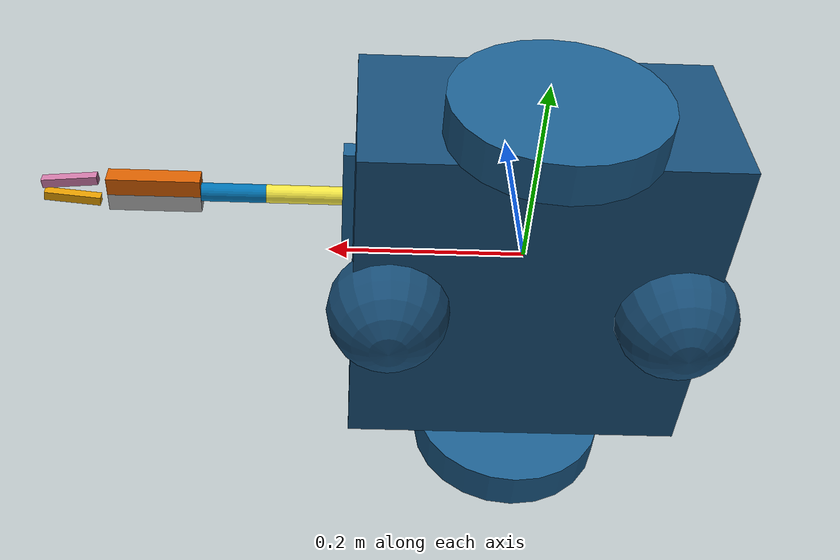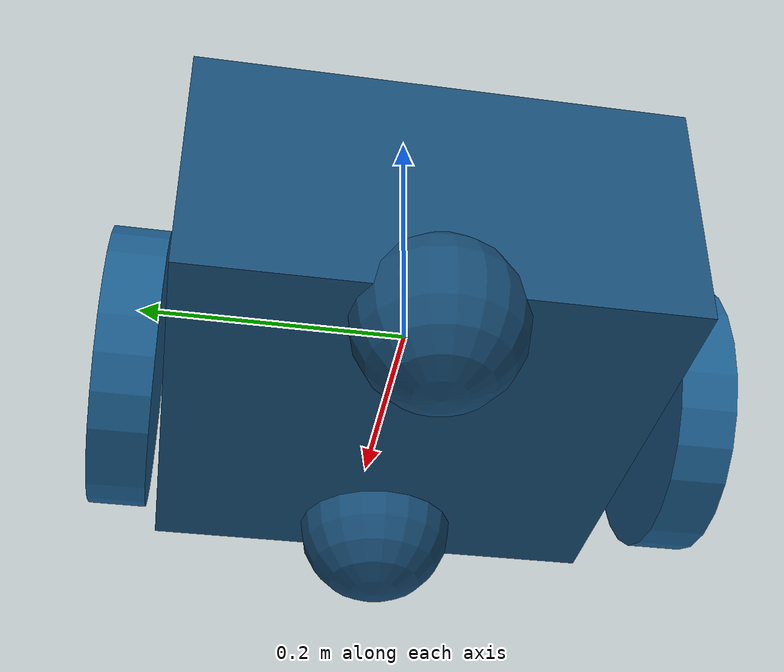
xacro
<?xml version="1.0"?>
<robot name="prm_robot"
  xmlns:xacro="http://ros.org/wiki/xacro">

  <!-- Definicao de Algumas Contantes -->

  <xacro:property name="base_width" value="0.35"/> <!-- Largura da base (corpo quadrado: == base_length) -->
  <xacro:property name="base_length" value="0.35"/> <!-- Comprimento da base (corpo quadrado: == base_width) -->
  <xacro:property name="base_height" value="0.18"/> <!-- Altura da base -->

  <xacro:property name="wheel_radius" value="0.10"/> <!-- Raio da roda -->
  <xacro:property name="wheel_width" value="0.04"/> <!-- Largura da roda -->
  <xacro:property name="wheel_ygap" value="0.025"/> <!-- Distancia entre as rodas -->
  <xacro:property name="wheel_zoff" value="0.05"/> <!-- Deslocamento da roda em Z -->
  <xacro:property name="wheel_xoff" value="0.0"/> <!-- Rodas no eixo do centro: gira no lugar sem varrer o corpo -->

  <xacro:property name="caster_xoff" value="0.14"/> <!-- Deslocamento do caster em X -->

  <!-- Definição de algumas propriedades inerciais -->
  <xacro:macro name="box_inertia" params="m w h d">
    <inertial>
      <origin xyz="0 0 0" rpy="${pi/2} 0 ${pi/2}"/>
      <mass value="${m}"/>
      <inertia ixx="${(m/12) * (h*h + d*d)}" ixy="0.0" ixz="0.0" iyy="${(m/12) * (w*w + d*d)}" iyz="0.0" izz="${(m/12) * (w*w + h*h)}"/>
    </inertial>
  </xacro:macro>

  <xacro:macro name="cylinder_inertia" params="m r h">
    <inertial>
      <origin xyz="0 0 0" rpy="${pi/2} 0 0" />
      <mass value="${m}"/>
      <inertia ixx="${(m/12) * (3*r*r + h*h)}" ixy = "0" ixz = "0" iyy="${(m/12) * (3*r*r + h*h)}" iyz = "0" izz="${(m/2) * (r*r)}"/>
    </inertial>
  </xacro:macro>

  <xacro:macro name="sphere_inertia" params="m r">
    <inertial>
      <mass value="${m}"/>
      <inertia ixx="${(2/5) * m * (r*r)}" ixy="0.0" ixz="0.0" iyy="${(2/5) * m * (r*r)}" iyz="0.0" izz="${(2/5) * m * (r*r)}"/>
    </inertial>
  </xacro:macro>

  <!-- Definindo plugin para publiar a pose do robo -->
  <gazebo>
    <plugin filename="libignition-gazebo-pose-publisher-system" name="ignition::gazebo::systems::PosePublisher">
      <publish_link_pose>false</publish_link_pose>
      <publish_model_pose>true</publish_model_pose>
      <publish_nested_model_pose>true</publish_nested_model_pose>
      <use_pose_vector_msg>false</use_pose_vector_msg>
      <publish_visual_pose>false</publish_visual_pose>
      <update_frequency>10</update_frequency>
    </plugin>
  </gazebo>

  <!-- Definindo a Base do Robô -->
  <link name="base_link">
    <visual>
      <geometry>
        <box size="${base_length} ${base_width} ${base_height}"/>
      </geometry>
      <material name="DarkBlue">
        <color rgba="0.09 0.30 0.46 1.0"/>
      </material>
    </visual>

    <collision>
      <geometry>
        <box size="${base_length} ${base_width} ${base_height}"/>
      </geometry>
    </collision>

    <xacro:box_inertia m="2.5" w="${base_width}" d="${base_length}" h="${base_height}"/>
  </link>

  <!-- Definindo a Base do Robô (base footprint) -->
  <link name="base_footprint">
    <xacro:box_inertia m="0" w="0" d="0" h="0"/>
  </link>

  <joint name="base_joint" type="fixed">
    <parent link="base_link"/>
    <child link="base_footprint"/>
    <origin xyz="0.0 0.0 ${-(wheel_radius+wheel_zoff)}" rpy="0 0 0"/>
  </joint>

  <!-- Definindo as Rodas do Robô -->
  <!-- Parâmetros: prefix: drivewhl_l, drivewhl_r -->
  <xacro:macro name="wheel" params="prefix x_reflect y_reflect">
    <link name="${prefix}_link">
      <visual>
        <origin xyz="0 0 0" rpy="${pi/2} 0 0"/>
        <geometry>
          <cylinder radius="${wheel_radius}" length="${wheel_width}"/>
        </geometry>
        <material name="LightBlue">
          <color rgba="0.11 0.37 0.56 1.0"/>
        </material>
      </visual>

      <collision>
        <origin xyz="0 0 0" rpy="${pi/2} 0 0"/>
        <geometry>
          <cylinder radius="${wheel_radius}" length="${wheel_width}"/>
        </geometry>
      </collision>

      <xacro:cylinder_inertia m="0.05" r="${wheel_radius}" h="${wheel_width}"/>
    </link>

    <joint name="${prefix}_joint" type="continuous">
      <parent link="base_link"/>
      <child link="${prefix}_link"/>
      <origin xyz="${x_reflect*wheel_xoff} ${y_reflect*(base_width/2+wheel_ygap)} ${-wheel_zoff}" rpy="0 0 0"/>
      <axis xyz="0 1 0"/>
      <dynamics damping="0.2"/>
    </joint>
  </xacro:macro>

  <xacro:wheel prefix="drivewhl_l" x_reflect="-1" y_reflect="1" />
  <xacro:wheel prefix="drivewhl_r" x_reflect="-1" y_reflect="-1" />

  <!-- High friction on drive wheels (prevents slip) -->
  <gazebo reference="drivewhl_l_link">
    <mu1>100.0</mu1>
    <mu2>50.0</mu2>
    <kp>1e6</kp>
    <kd>1.0</kd>
  </gazebo>
  <gazebo reference="drivewhl_r_link">
    <mu1>100.0</mu1>
    <mu2>50.0</mu2>
    <kp>1e6</kp>
    <kd>1.0</kd>
  </gazebo>

  <link name="front_caster">
    <visual>
      <geometry>
        <sphere radius="${(wheel_radius+wheel_zoff-(base_height/2))}"/>
      </geometry>
      <material name="DarkBlue">
        <color rgba="0.09 0.30 0.46 1.0"/>
      </material>
    </visual>

    <collision>
      <origin xyz="0 0 0" rpy="0 0 0"/>
      <geometry>
        <sphere radius="${(wheel_radius+wheel_zoff-(base_height/2))}"/>
      </geometry>
    </collision>

    <xacro:sphere_inertia m="0.005" r="${(wheel_radius+wheel_zoff-(base_height/2))}"/>
  </link>

  <joint name="caster_joint" type="fixed">
    <parent link="base_link"/>
    <child link="front_caster"/>
    <origin xyz="${caster_xoff} 0.0 ${-(base_height/2)}" rpy="0 0 0"/>
  </joint>

  <!-- Low friction on caster (desliza mas não patina): mu 0.1 (era 0.01) -->
  <gazebo reference="front_caster">
    <mu1>0.1</mu1>
    <mu2>0.1</mu2>
    <kp>100000.0</kp>
    <kd>1.0</kd>
  </gazebo>

  <!-- Caster traseiro: com as rodas no centro, dá apoio fore/aft (não tomba). -->
  <link name="rear_caster">
    <visual>
      <geometry>
        <sphere radius="${(wheel_radius+wheel_zoff-(base_height/2))}"/>
      </geometry>
      <material name="DarkBlue">
        <color rgba="0.09 0.30 0.46 1.0"/>
      </material>
    </visual>

    <collision>
      <origin xyz="0 0 0" rpy="0 0 0"/>
      <geometry>
        <sphere radius="${(wheel_radius+wheel_zoff-(base_height/2))}"/>
      </geometry>
    </collision>

    <xacro:sphere_inertia m="0.005" r="${(wheel_radius+wheel_zoff-(base_height/2))}"/>
  </link>

  <joint name="rear_caster_joint" type="fixed">
    <parent link="base_link"/>
    <child link="rear_caster"/>
    <origin xyz="${-caster_xoff} 0.0 ${-(base_height/2)}" rpy="0 0 0"/>
  </joint>

  <gazebo reference="rear_caster">
    <mu1>0.1</mu1>
    <mu2>0.1</mu2>
    <kp>100000.0</kp>
    <kd>1.0</kd>
  </gazebo>

  <!-- Definindo a IMU do Robô (física) -->
  <link name="imu_link">
    <visual>
      <geometry>
        <box size="0.1 0.1 0.1"/>
      </geometry>
    </visual>

    <collision>
      <geometry>
        <box size="0.1 0.1 0.1"/>
      </geometry>
    </collision>

    <xacro:box_inertia m="0.001" w="0.1" d="0.1" h="0.1"/>
  </link>

  <!-- Definindo o sensor IMU no Gazebo -->
  <gazebo reference="imu_link">
    <sensor name="imu_sensor" type="imu">
      <ignition_frame_id>imu_link</ignition_frame_id>
      <plugin filename="ignition-gazebo-imu-system" name="ignition::gazebo::systems::Imu">
      </plugin>

      <topic>imu</topic>
      <always_on>true</always_on>
      <update_rate>50</update_rate>
      <visualize>true</visualize>
      <imu>
        <angular_velocity>
          <x>
            <noise type="gaussian">
              <mean>0.0</mean>
              <stddev>2e-4</stddev>
              <bias_mean>0.0000075</bias_mean>
              <bias_stddev>0.0000008</bias_stddev>
            </noise>
          </x>
          <y>
            <noise type="gaussian">
              <mean>0.0</mean>
              <stddev>2e-4</stddev>
              <bias_mean>0.0000075</bias_mean>
              <bias_stddev>0.0000008</bias_stddev>
            </noise>
          </y>
          <z>
            <noise type="gaussian">
              <mean>0.0</mean>
              <stddev>2e-4</stddev>
              <bias_mean>0.0000075</bias_mean>
              <bias_stddev>0.0000008</bias_stddev>
            </noise>
          </z>
        </angular_velocity>
        <linear_acceleration>
          <x>
            <noise type="gaussian">
              <mean>0.0</mean>
              <stddev>1.7e-2</stddev>
              <bias_mean>0.1</bias_mean>
              <bias_stddev>0.001</bias_stddev>
            </noise>
          </x>
          <y>
            <noise type="gaussian">
              <mean>0.0</mean>
              <stddev>1.7e-2</stddev>
              <bias_mean>0.1</bias_mean>
              <bias_stddev>0.001</bias_stddev>
            </noise>
          </y>
          <z>
            <noise type="gaussian">
              <mean>0.0</mean>
              <stddev>1.7e-2</stddev>
              <bias_mean>0.1</bias_mean>
              <bias_stddev>0.001</bias_stddev>
            </noise>
          </z>
        </linear_acceleration>
      </imu>
    </sensor>
  </gazebo>

  <!-- Ligando a IMU a base do robô -->
  <joint name="imu_joint" type="fixed">
    <parent link="base_link"/>
    <child link="imu_link"/>
    <origin xyz="0 0 0.01"/>
  </joint>

  <!-- Define um sistema de controle ROS 2 utilizando a infraestrutura ros2_control -->
  <ros2_control name="IgnitionSystem" type="system">

    <!-- Seção de hardware do sistema, onde é especificado o plugin que fará a ponte entre o Gazebo (Ignition) e o ros2_control -->
    <hardware>
      <!-- Plugin que permite a integração entre o Ignition Gazebo e o framework ros2_control -->
      <plugin>ign_ros2_control/IgnitionSystem</plugin>
    </hardware>

    <!-- Definição do primeiro atuador, correspondente à roda esquerda ("drive wheel left") -->
    <joint name="drivewhl_l_joint">

      <!-- Interface de comando de velocidade angular (por exemplo, rad/s) para essa junta -->
      <command_interface name="velocity">
        <!-- Valor mínimo permitido para o comando de velocidade (limite inferior) -->
        <param name="min">-15</param>
        <!-- Valor máximo permitido para o comando de velocidade (limite superior) -->
        <param name="max">15</param>
      </command_interface>

      <!-- Interface de estado que fornece a posição atual da junta (por exemplo, em radianos) -->
      <state_interface name="position"/>
      <!-- Interface de estado que fornece a velocidade atual da junta (por exemplo, em rad/s) -->
      <state_interface name="velocity"/>
    </joint>

    <!-- Definição do segundo atuador, correspondente à roda direita ("drive wheel right") -->
    <joint name="drivewhl_r_joint">

      <!-- Interface de comando de velocidade angular para essa junta -->
      <command_interface name="velocity">
        <!-- Limite inferior da velocidade que pode ser comandada -->
        <param name="min">-15</param>
        <!-- Limite superior da velocidade que pode ser comandada -->
        <param name="max">15</param>
      </command_interface>

      <!-- Interface de estado para leitura da posição da junta -->
      <state_interface name="position"/>

      <!-- Interface de estado para leitura da velocidade da junta -->
      <state_interface name="velocity"/>
    </joint>

    <!-- Junta 1 (ombro/base do braço): PITCH vertical, levanta o braço 0 -> 45 graus -->
    <joint name="shoulder_pitch">
      <command_interface name="position">
        <param name="min">0.0</param>
        <param name="max">0.785398</param>
      </command_interface>
      <!-- Início em 0 graus: braço apontando reto para a frente -->
      <state_interface name="position">
        <param name="initial_value">0.0</param>
      </state_interface>
      <state_interface name="velocity"/>
    </joint>

    <joint name="gripper_extension">
      <command_interface name="position">
        <param name="min">-1.5708</param>
        <param name="max">0.0</param>
      </command_interface>
      <!-- Início RETRAÍDO em -90°: braço recolhido ao lado já no spawn. Estender
           leva a 0 (90° de varredura) = diretamente à frente do robô. -->
      <state_interface name="position">
        <param name="initial_value">-1.5708</param>
      </state_interface>
      <state_interface name="velocity"/>
    </joint>

    <joint name="arm_elbow">
      <command_interface name="position">
        <param name="min">-1.5708</param>
        <param name="max">0.0</param>
      </command_interface>
      <state_interface name="position">
        <param name="initial_value">-1.5708</param>
      </state_interface>
      <state_interface name="velocity"/>
    </joint>

    <joint name="left_gripper_joint">
      <command_interface name="position">
        <param name="min">0.0</param>
        <param name="max">0.06</param>
      </command_interface>

      <state_interface name="position">
        <param name="initial_value">0.0</param>
      </state_interface>
      <state_interface name="velocity"/>
    </joint>

    <joint name="right_gripper_joint">
      <command_interface name="position">
        <param name="min">-0.06</param>
        <param name="max">0.0</param>
      </command_interface>

      <state_interface name="position">
        <param name="initial_value">0.0</param>
      </state_interface>
      <state_interface name="velocity"/>
    </joint>

  </ros2_control>

  <gazebo>
    <plugin filename="ign_ros2_control-system" name="ign_ros2_control::IgnitionROS2ControlPlugin">
      <parameters>$(find bb8_control)/config/controller_config.yaml</parameters>
    </plugin>
  </gazebo>

  <link name="lidar_link">
    <inertial>
      <origin xyz="0 0 0" rpy="0 0 0"/>
      <mass value="0.125"/>
      <inertia ixx="0.001" ixy="0" ixz="0" iyy="0.001" iyz="0" izz="0.001" />
    </inertial>

    <collision>
      <origin xyz="0 0 0" rpy="0 0 0"/>
      <geometry>
        <cylinder radius="0.0508" length="0.055"/>
      </geometry>
    </collision>

    <visual>
      <origin xyz="0 0 0" rpy="0 0 0"/>
      <geometry>
        <cylinder radius="0.0508" length="0.055"/>
      </geometry>
      <material name="LightBlue">
        <color rgba="0.11 0.37 0.56 1.0"/>
      </material>
    </visual>
  </link>

  <joint name="lidar_joint" type="fixed">
    <parent link="base_link"/>
    <child link="lidar_link"/>
    <origin xyz="0 0 0.12" rpy="0 0 0"/>
  </joint>

  <gazebo reference="lidar_link">
    <sensor name="lidar" type="gpu_lidar">
      <ignition_frame_id>lidar_link</ignition_frame_id>
      <topic>scan</topic>
      <always_on>true</always_on>
      <visualize>true</visualize>
      <update_rate>20</update_rate>
      <ray>
        <scan>
          <horizontal>
            <samples>360</samples>
            <resolution>1.000000</resolution>
            <min_angle>0.000000</min_angle>
            <max_angle>6.280000</max_angle>
          </horizontal>
        </scan>
        <range>
          <min>0.120000</min>
          <max>5.0</max>
          <resolution>0.05000</resolution>
        </range>
        <noise>
          <type>gaussian</type>
          <mean>0.0</mean>
          <stddev>0.01</stddev>
        </noise>
      </ray>
    </sensor>
  </gazebo>

  <link name="camera_link">
    <visual>
      <origin xyz="0 0 0" rpy="0 0 0"/>
      <geometry>
        <box size="0.015 0.130 0.022"/>
      </geometry>
      <material name="LightBlue">
        <color rgba="0.11 0.37 0.56 1.0"/>
      </material>
    </visual>

    <collision>
      <origin xyz="0 0 0" rpy="0 0 0"/>
      <geometry>
        <box size="0.015 0.130 0.022"/>
      </geometry>
    </collision>

    <inertial>
      <origin xyz="0 0 0" rpy="0 0 0"/>
      <mass value="0.035"/>
      <inertia ixx="0.001" ixy="0" ixz="0" iyy="0.001" iyz="0" izz="0.001" />
    </inertial>
  </link>

  <joint name="camera_joint" type="fixed">
    <parent link="base_link"/>
    <child link="camera_link"/>
    <!-- Câmera levemente acima do plano do braço retraído (arm_base z=0.05),
         senão o braço recolhido fica na frente da lente. -->
    <origin xyz="0.18 0 0.085" rpy="0 0 0"/>
  </joint>

  <link name="camera_frame"/>

  <joint name="camera_frame_joint" type="fixed">
    <origin xyz="0 0 0" rpy="${-pi/2} 0 ${-pi/2}"/>
    <parent link="camera_link"/>
    <child link="camera_frame"/>
  </joint>

  <gazebo reference="camera_link">

    <!-- Insere uma camera comum RGB -->

    <!-- RGB camera REMOVIDA: mantida apenas a câmera semântica (corta 1 render
         pass por frame). bb8_visual_slam (rtabmap) fica sem fonte RGB. -->

    <!-- Insere uma camera com segmentacao semantica -->
    <sensor name="robot_cam" type="segmentation">
      <topic>robot_cam</topic>
      <camera>
        <segmentation_type>semantic</segmentation_type>
        <horizontal_fov>1.9</horizontal_fov> <!-- FOV largo: pega a flag mais de lado durante a exploração (vision_processor.camera_hfov_deg deve casar) -->
        <image>
          <width>320</width>
          <height>240</height>
        </image>
        <clip>
          <near>0.1</near>
          <far>100</far>
        </clip>
      </camera>
      <always_on>1</always_on>
      <update_rate>15</update_rate>
      <visualize>true</visualize>
    </sensor>

    <!-- Insere uma camera bounding box 2D completo -->

    <!-- Insere uma camera bounding box 2D -->

    <!-- Insere uma camera bounding box 3D -->

  </gazebo>

  <!-- Junta 1 - Ombro/base do braço: PITCH no plano vertical.
       axis (0 -1 0): rotação positiva LEVANTA a ponta do braço.
       lower=0 (reto para a frente), upper=0.785398 rad (45 graus). -->
  <joint name="shoulder_pitch" type="revolute">
    <axis xyz="0 -1 0"/>
    <limit effort="50.0" lower="0.0" upper="0.785398" velocity="3.0"/>
    <!-- Realocado para o TOPO do corpo quadrado (z=base_height/2=0.09), recuado
         do lidar central (x=0.13 > raio lidar 0.05) e à frente p/ alcançar flags. -->
    <origin rpy="0 0 0" xyz="0.13 0 0.09"/>
    <parent link="base_link"/>
    <child link="arm_base"/>
  </joint>

  <!-- Link curto do ombro: tudo abaixo herda o pitch desta junta -->
  <link name="arm_base">
    <visual>
      <geometry>
        <cylinder length="0.04" radius="0.012"/>
      </geometry>
      <origin rpy="0 1.57075 0" xyz="0.02 0 0"/>
      <material name="LightBlue">
        <color rgba="0.11 0.37 0.56 1.0"/>
      </material>
    </visual>
    <!-- Colisão removida: elo estrutural interno, nunca toca nada. Simplifica física. -->
    <xacro:cylinder_inertia m="0.01" r="0.012" h="0.04"/>
  </link>

  <!-- Junta 2: horizontal (yaw, Z-axis), varre o braço lateralmente.
       Re-parented para arm_base para herdar o pitch da Junta 1. -->
  <joint name="gripper_extension" type="revolute">
    <axis xyz="0 0 1"/>
    <!-- Junta horizontal: amplitude limitada a 90° (-1.5708 a 0). Velocidade 2.0 (desdobra rápido). -->
    <limit effort="50.0" lower="-1.5708" upper="0.0" velocity="3.0"/>
    <origin rpy="0 0 0" xyz="0.04 0 0"/>
    <parent link="arm_base"/>
    <child link="upper_arm"/>
  </joint>

  <!-- Upper arm segment (shoulder → elbow) -->
  <link name="upper_arm">
    <visual>
      <geometry>
        <cylinder length="0.10" radius="0.01"/>
      </geometry>
      <origin rpy="0 1.57075 0" xyz="0.05 0 0"/>
    </visual>
    <!-- Colisão removida: elo estrutural interno. Simplifica física. -->
    <xacro:cylinder_inertia m="0.005" r="0.01" h="0.10"/>
  </link>

  <!-- Elbow: folds lower arm back toward body (same Z-axis rotation) -->
  <joint name="arm_elbow" type="revolute">
    <axis xyz="0 0 1"/>
    <!-- Junta horizontal: amplitude limitada a 90° (-1.5708 a 0). Velocidade 2.0 (desdobra rápido). -->
    <limit effort="50.0" lower="-1.5708" upper="0.0" velocity="3.0"/>
    <origin xyz="0.10 0 0" rpy="0 0 0"/>
    <parent link="upper_arm"/>
    <child link="gripper_pole"/>
  </joint>

  <link name="gripper_pole">
    <visual>
      <geometry>
        <cylinder length="0.12" radius="0.01"/>
      </geometry>
      <origin rpy="0 1.57075 0" xyz="0.06 0 0"/>
    </visual>

    <!-- Colisão removida: elo estrutural interno. Simplifica física. -->

    <xacro:cylinder_inertia m="0.01" r="0.01" h="0.12"/>

  </link>

  <joint name="left_gripper_joint" type="prismatic">
    <axis xyz="0 1 0"/>
    <limit effort="100.0" lower="0.0" upper="0.06" velocity="0.25"/>

    <origin rpy="0 0 0" xyz="0.12 0.01 0"/>
    <parent link="gripper_pole"/>
    <child link="left_gripper"/>
  </joint>

  <link name="left_gripper">
    <visual>
      <geometry>
        <box size="0.1 0.02 0.02"/> <!-- Comprimento, largura, altura -->
      </geometry>
    </visual>

    <collision>
      <geometry>
        <box size="0.1 0.02 0.02"/>
      </geometry>
    </collision>

    <xacro:box_inertia m="0.015" w="0.02" h="0.02" d="0.1"/>

  </link>

  <joint name="left_tip_joint" type="fixed">
    <origin rpy="0.0 0 0" xyz="0.06 0.001 0"/>
    <parent link="left_gripper"/>
    <child link="left_tip"/>
  </joint>

  <link name="left_tip">

    <visual>
      <origin rpy="0 0 -0.1" xyz="0.03 0 0"/>
      <geometry>
        <box size="0.06 0.01 0.01"/>
      </geometry>
    </visual>

    <collision>
      <origin rpy="0 0 -0.1" xyz="0.03 0 0"/>
      <geometry>
        <box size="0.06 0.01 0.01"/>
      </geometry>
    </collision>

    <xacro:box_inertia m="0.005" w="0.01" h="0.01" d="0.06"/>

  </link>

  <joint name="right_gripper_joint" type="prismatic">
    <axis xyz="0 1 0"/>
    <limit effort="100.0" lower="-0.06" upper="0" velocity="0.25"/>
    <origin rpy="0 0 0" xyz="0.12 -0.01 0"/>

    <parent link="gripper_pole"/>
    <child link="right_gripper"/>
  </joint>

  <link name="right_gripper">
    <visual>
      <origin rpy="-3.1415 0 0" xyz="0 0 0"/>
      <geometry>
        <box size="0.1 0.02 0.02"/>
      </geometry>
    </visual>

    <collision>
      <origin rpy="-3.1415 0 0" xyz="0 0 0"/>
      <geometry>
        <box size="0.1 0.02 0.02"/>
      </geometry>
    </collision>

    <xacro:box_inertia m="0.015" w="0.02" h="0.02" d="0.1"/>

  </link>

  <joint name="right_tip_joint" type="fixed">
    <origin rpy="-3.1415 0 0" xyz="0.06 -0.001 0"/>
    <parent link="right_gripper"/>
    <child link="right_tip"/>
  </joint>

  <link name="right_tip">
    <visual>
      <origin rpy="0 0 -0.1" xyz="0.03 0 0"/>
      <geometry>
        <box size="0.06 0.01 0.01"/>
      </geometry>
    </visual>

    <collision>
      <origin rpy="0 0 -0.1" xyz="0.03 0 0"/>
      <geometry>
        <box size="0.06 0.01 0.01"/>
      </geometry>
    </collision>

    <xacro:box_inertia m="0.005" w="0.01" h="0.01" d="0.06"/>

  </link>

  <!-- Alto atrito + contato rígido nos dedos/pontas da garra: segura a haste da
       flag firme, sem escorregar (a flag é leve, então atrito alto resolve). -->
  <xacro:macro name="grip_friction" params="ref">
    <gazebo reference="${ref}">
      <mu1>200.0</mu1>
      <mu2>200.0</mu2>
      <kp>1e6</kp>
      <kd>1.0</kd>
      <minDepth>0.001</minDepth>
      <maxVel>0.0</maxVel>
    </gazebo>
  </xacro:macro>
  <xacro:grip_friction ref="left_gripper"/>
  <xacro:grip_friction ref="right_gripper"/>
  <xacro:grip_friction ref="left_tip"/>
  <xacro:grip_friction ref="right_tip"/>

</robot>
